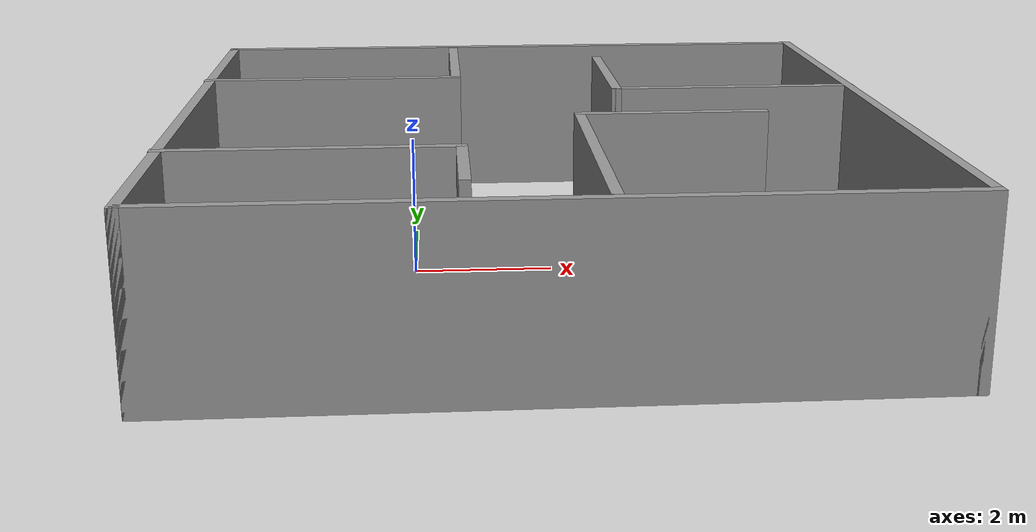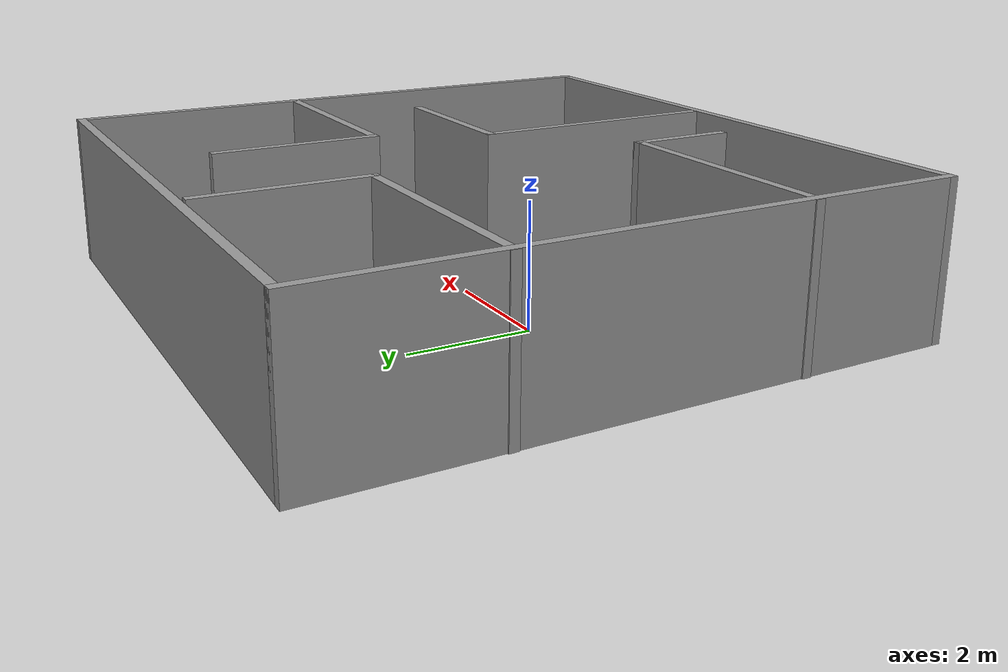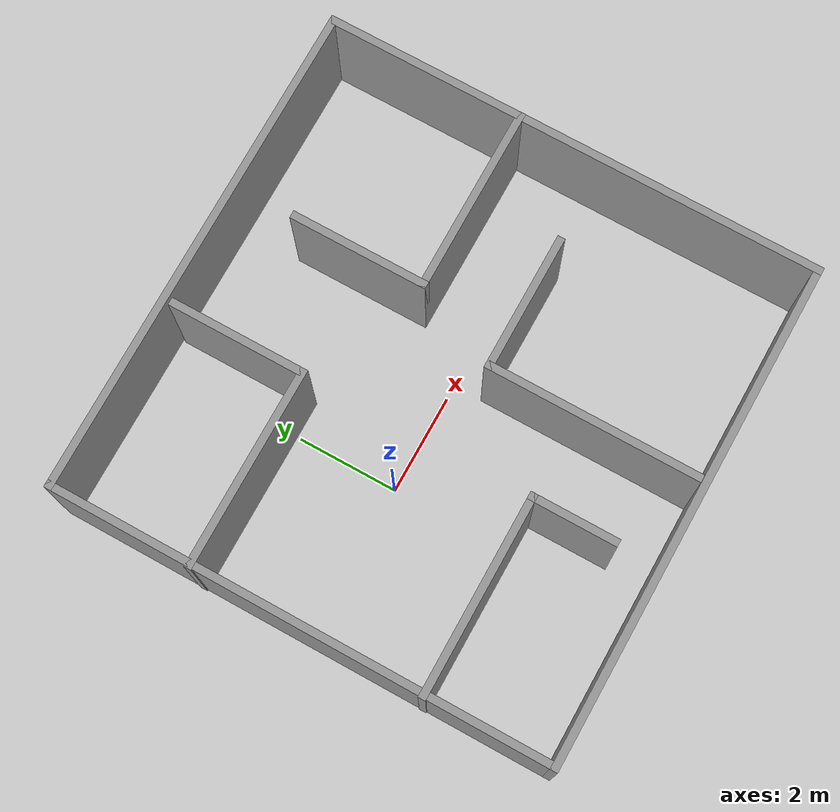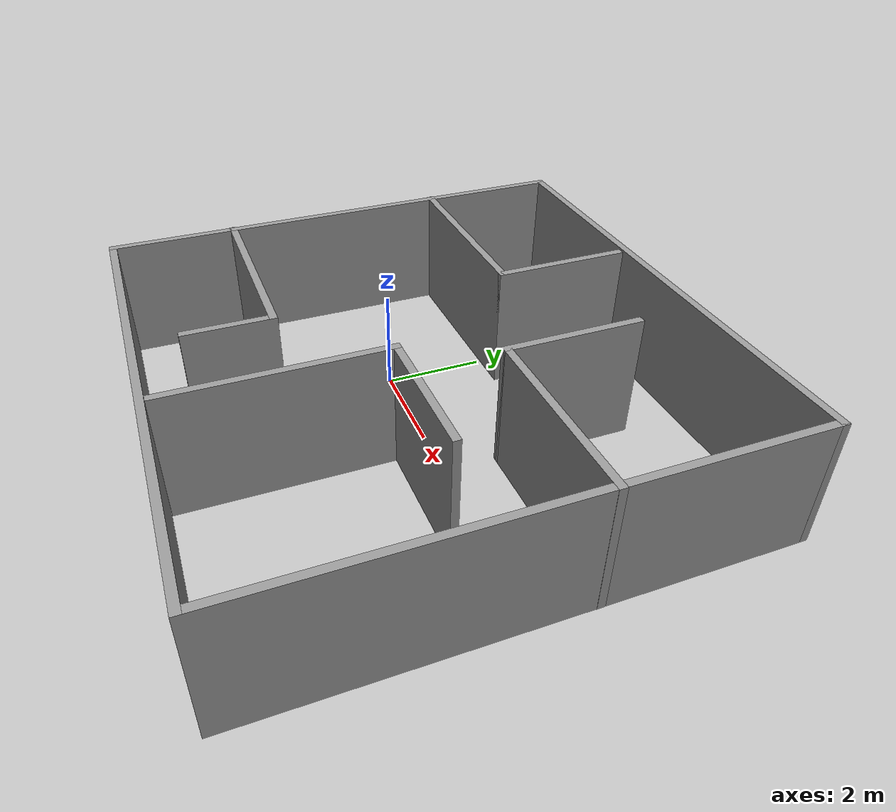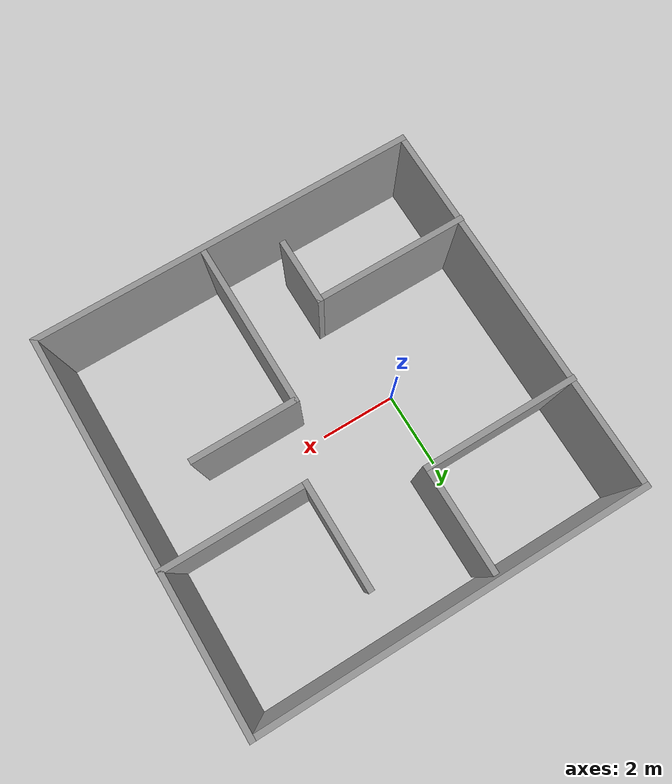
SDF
<?xml version='1.0'?>
<sdf version='1.7'>
  <model name='room.model'>
    <pose>1.74731 0.035 0 0 -0 0</pose>
    <link name='Wall_1'>
      <collision name='Wall_1_Collision'>
        <geometry>
          <box>
            <size>10 0.15 2.5</size>
          </box>
        </geometry>
        <pose>0 0 1.25 0 -0 0</pose>
      </collision>
      <visual name='Wall_1_Visual'>
        <pose>0 0 1.25 0 -0 0</pose>
        <geometry>
          <box>
            <size>10 0.15 2.5</size>
          </box>
        </geometry>
        <material>
          <script>
            <uri>file://media/materials/scripts/gazebo.material</uri>
            <name>Gazebo/Grey</name>
          </script>
          <ambient>1 1 1 1</ambient>
        </material>
        <meta>
          <layer>0</layer>
        </meta>
      </visual>
      <pose>-4.91731 0 0 0 -0 1.5708</pose>
    </link>
    <link name='Wall_10'>
      <collision name='Wall_10_Collision'>
        <geometry>
          <box>
            <size>2.75 0.15 2.5</size>
          </box>
        </geometry>
        <pose>0 0 1.25 0 -0 0</pose>
      </collision>
      <visual name='Wall_10_Visual'>
        <pose>0 0 1.25 0 -0 0</pose>
        <geometry>
          <box>
            <size>2.75 0.15 2.5</size>
          </box>
        </geometry>
        <material>
          <script>
            <uri>file://media/materials/scripts/gazebo.material</uri>
            <name>Gazebo/Grey</name>
          </script>
          <ambient>1 1 1 1</ambient>
        </material>
        <meta>
          <layer>0</layer>
        </meta>
      </visual>
      <pose>-1.08792 3.42177 0 0 -0 1.5708</pose>
    </link>
    <link name='Wall_12'>
      <collision name='Wall_12_Collision'>
        <geometry>
          <box>
            <size>2.75 0.15 2.5</size>
          </box>
        </geometry>
        <pose>0 0 1.25 0 -0 0</pose>
      </collision>
      <visual name='Wall_12_Visual'>
        <pose>0 0 1.25 0 -0 0</pose>
        <geometry>
          <box>
            <size>2.75 0.15 2.5</size>
          </box>
        </geometry>
        <material>
          <script>
            <uri>file://media/materials/scripts/gazebo.material</uri>
            <name>Gazebo/Grey</name>
          </script>
          <ambient>1 1 1 1</ambient>
        </material>
        <meta>
          <layer>0</layer>
        </meta>
      </visual>
      <pose>1.33792 2.35996 0 0 -0 -1.5708</pose>
    </link>
    <link name='Wall_13'>
      <collision name='Wall_13_Collision'>
        <geometry>
          <box>
            <size>3.75 0.15 2.5</size>
          </box>
        </geometry>
        <pose>0 0 1.25 0 -0 0</pose>
      </collision>
      <visual name='Wall_13_Visual'>
        <pose>0 0 1.25 0 -0 0</pose>
        <geometry>
          <box>
            <size>3.75 0.15 2.5</size>
          </box>
        </geometry>
        <material>
          <script>
            <uri>file://media/materials/scripts/gazebo.material</uri>
            <name>Gazebo/Grey</name>
          </script>
          <ambient>1 1 1 1</ambient>
        </material>
        <meta>
          <layer>0</layer>
        </meta>
      </visual>
      <pose>3.13792 1.05996 0 0 -0 0</pose>
    </link>
    <link name='Wall_15'>
      <collision name='Wall_15_Collision'>
        <geometry>
          <box>
            <size>4 0.15 2.5</size>
          </box>
        </geometry>
        <pose>0 0 1.25 0 -0 0</pose>
      </collision>
      <visual name='Wall_15_Visual'>
        <pose>0 0 1.25 0 -0 0</pose>
        <geometry>
          <box>
            <size>4 0.15 2.5</size>
          </box>
        </geometry>
        <material>
          <script>
            <uri>file://media/materials/scripts/gazebo.material</uri>
            <name>Gazebo/Grey</name>
          </script>
          <ambient>1 1 1 1</ambient>
        </material>
        <meta>
          <layer>0</layer>
        </meta>
      </visual>
      <pose>-3.01292 -2.4313 0 0 -0 0</pose>
    </link>
    <link name='Wall_16'>
      <collision name='Wall_16_Collision'>
        <geometry>
          <box>
            <size>1.75 0.15 2.5</size>
          </box>
        </geometry>
        <pose>0 0 1.25 0 -0 0</pose>
      </collision>
      <visual name='Wall_16_Visual'>
        <pose>0 0 1.25 0 -0 0</pose>
        <geometry>
          <box>
            <size>1.75 0.15 2.5</size>
          </box>
        </geometry>
        <material>
          <script>
            <uri>file://media/materials/scripts/gazebo.material</uri>
            <name>Gazebo/Grey</name>
          </script>
          <ambient>1 1 1 1</ambient>
        </material>
        <meta>
          <layer>0</layer>
        </meta>
      </visual>
      <pose>-1.08792 -3.2313 0 0 -0 -1.5708</pose>
    </link>
    <link name='Wall_18'>
      <collision name='Wall_18_Collision'>
        <geometry>
          <box>
            <size>4.25 0.15 2.5</size>
          </box>
        </geometry>
        <pose>0 0 1.25 0 -0 0</pose>
      </collision>
      <visual name='Wall_18_Visual'>
        <pose>0 0 1.25 0 -0 0</pose>
        <geometry>
          <box>
            <size>4.25 0.15 2.5</size>
          </box>
        </geometry>
        <material>
          <script>
            <uri>file://media/materials/scripts/gazebo.material</uri>
            <name>Gazebo/Grey</name>
          </script>
          <ambient>1 1 1 1</ambient>
        </material>
        <meta>
          <layer>0</layer>
        </meta>
      </visual>
      <pose>0.599587 -2.71936 0 0 -0 1.5708</pose>
    </link>
    <link name='Wall_19'>
      <collision name='Wall_19_Collision'>
        <geometry>
          <box>
            <size>2.75 0.15 2.5</size>
          </box>
        </geometry>
        <pose>0 0 1.25 0 -0 0</pose>
      </collision>
      <visual name='Wall_19_Visual'>
        <pose>0 0 1.25 0 -0 0</pose>
        <geometry>
          <box>
            <size>2.75 0.15 2.5</size>
          </box>
        </geometry>
        <material>
          <script>
            <uri>file://media/materials/scripts/gazebo.material</uri>
            <name>Gazebo/Grey</name>
          </script>
          <ambient>1 1 1 1</ambient>
        </material>
        <meta>
          <layer>0</layer>
        </meta>
      </visual>
      <pose>1.89959 -0.669356 0 0 -0 0</pose>
    </link>
    <link name='Wall_3'>
      <collision name='Wall_3_Collision'>
        <geometry>
          <box>
            <size>10 0.15 2.5</size>
          </box>
        </geometry>
        <pose>0 0 1.25 0 -0 0</pose>
      </collision>
      <visual name='Wall_3_Visual'>
        <pose>0 0 1.25 0 -0 0</pose>
        <geometry>
          <box>
            <size>10 0.15 2.5</size>
          </box>
        </geometry>
        <material>
          <script>
            <uri>file://media/materials/scripts/gazebo.material</uri>
            <name>Gazebo/Grey</name>
          </script>
          <ambient>1 1 1 1</ambient>
        </material>
        <meta>
          <layer>0</layer>
        </meta>
      </visual>
      <pose>0.007691 -4.925 0 0 -0 0</pose>
    </link>
    <link name='Wall_5'>
      <collision name='Wall_5_Collision'>
        <geometry>
          <box>
            <size>10 0.15 2.5</size>
          </box>
        </geometry>
        <pose>0 0 1.25 0 -0 0</pose>
      </collision>
      <visual name='Wall_5_Visual'>
        <pose>0 0 1.25 0 -0 0</pose>
        <geometry>
          <box>
            <size>10 0.15 2.5</size>
          </box>
        </geometry>
        <material>
          <script>
            <uri>file://media/materials/scripts/gazebo.material</uri>
            <name>Gazebo/Grey</name>
          </script>
          <ambient>1 1 1 1</ambient>
        </material>
        <meta>
          <layer>0</layer>
        </meta>
      </visual>
      <pose>4.93269 0 0 0 -0 1.5708</pose>
    </link>
    <link name='Wall_7'>
      <collision name='Wall_7_Collision'>
        <geometry>
          <box>
            <size>10 0.15 2.5</size>
          </box>
        </geometry>
        <pose>0 0 1.25 0 -0 0</pose>
      </collision>
      <visual name='Wall_7_Visual'>
        <pose>0 0 1.25 0 -0 0</pose>
        <geometry>
          <box>
            <size>10 0.15 2.5</size>
          </box>
        </geometry>
        <material>
          <script>
            <uri>file://media/materials/scripts/gazebo.material</uri>
            <name>Gazebo/Grey</name>
          </script>
          <ambient>1 1 1 1</ambient>
        </material>
        <meta>
          <layer>0</layer>
        </meta>
      </visual>
      <pose>0.007691 4.925 0 0 -0 0</pose>
    </link>
    <link name='Wall_9'>
      <collision name='Wall_9_Collision'>
        <geometry>
          <box>
            <size>4 0.15 2.5</size>
          </box>
        </geometry>
        <pose>0 0 1.25 0 -0 0</pose>
      </collision>
      <visual name='Wall_9_Visual'>
        <pose>0 0 1.25 0 -0 0</pose>
        <geometry>
          <box>
            <size>4 0.15 2.5</size>
          </box>
        </geometry>
        <material>
          <script>
            <uri>file://media/materials/scripts/gazebo.material</uri>
            <name>Gazebo/Grey</name>
          </script>
          <ambient>1 1 1 1</ambient>
        </material>
        <meta>
          <layer>0</layer>
        </meta>
      </visual>
      <pose>-3.01292 2.12177 0 0 -0 0</pose>
    </link>
    <static>1</static>
  </model>
</sdf>
